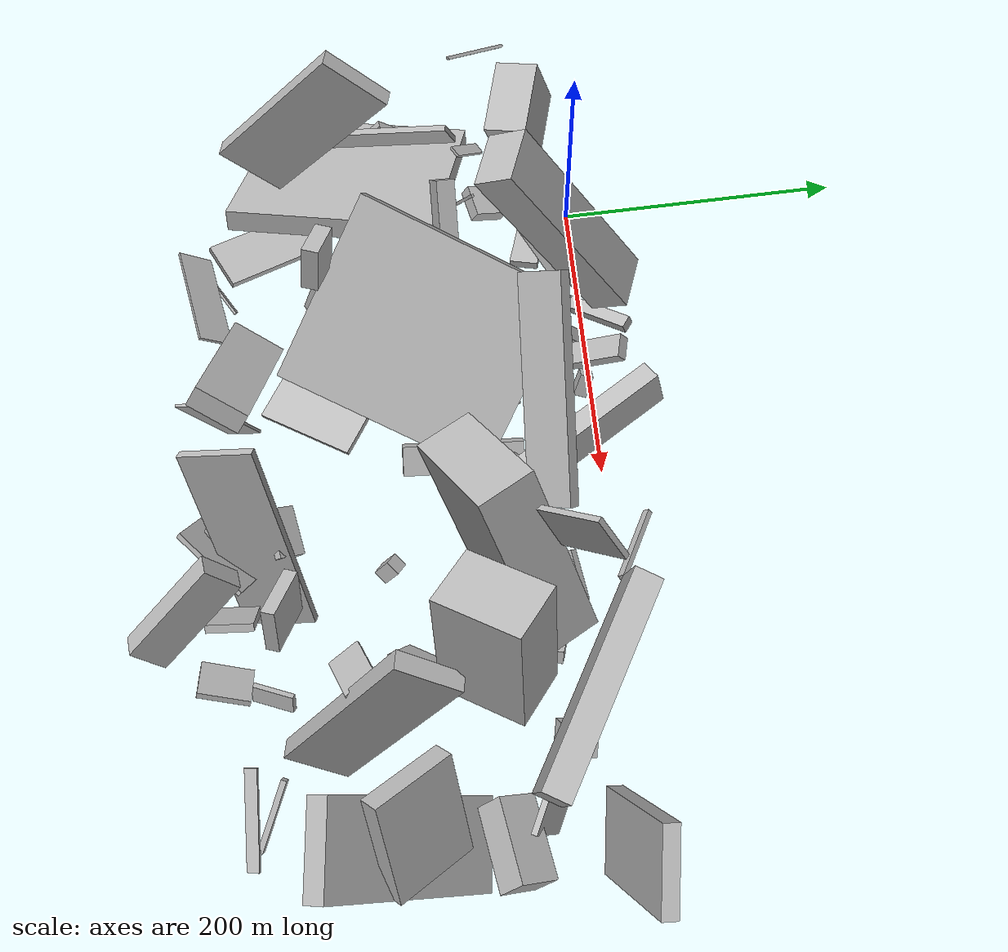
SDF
<sdf version="1.6">
 <world name="default">
  <model name="building_2">
   <static>0</static>
   <pose>-43.06416409679491 -35.29537906546936 41.528346216033526 1.5122327611272661 0.2192334558442204 -1.8726367923088598</pose>
   <link name="link">
    <gravity>0</gravity>
    <pose>0 0 26.5 0 0 0</pose>
    <collision name="collision"><geometry><box><size>31 48 53</size></box></geometry></collision>
    <visual name="visual">
     <cast_shadows>0</cast_shadows>
     <geometry><box><size>31 48 53</size></box></geometry>
     <material>
      <script>
       <uri>model://HANNAS_wall/materials/scripts</uri>
       <uri>model://HANNAS_wall/materials/textures</uri>
       <name>vrc/HANNAS_wall</name>
      </script>
     </material>
    </visual>
   </link>
  </model>
  <model name="building_3">
   <static>0</static>
   <pose>11.928828027424181 -172.6298789571358 54.83418452722762 -3.041463361954685 0.9452411731629204 -0.14230768062275148</pose>
   <link name="link">
    <gravity>0</gravity>
    <pose>0 0 75.0 0 0 0</pose>
    <collision name="collision"><geometry><box><size>15 150 150</size></box></geometry></collision>
    <visual name="visual">
     <cast_shadows>0</cast_shadows>
     <geometry><box><size>15 150 150</size></box></geometry>
     <material>
      <script>
       <uri>model://HANNAS_wall/materials/scripts</uri>
       <uri>model://HANNAS_wall/materials/textures</uri>
       <name>vrc/HANNAS_wall</name>
      </script>
     </material>
    </visual>
   </link>
  </model>
  <model name="building_4">
   <static>0</static>
   <pose>184.66313208969285 -252.12507988119435 114.79458210587899 2.497440499912522 -0.24296751222006827 1.4240888975236907</pose>
   <link name="link">
    <gravity>0</gravity>
    <pose>0 0 75.0 0 0 0</pose>
    <collision name="collision"><geometry><box><size>52 6 150</size></box></geometry></collision>
    <visual name="visual">
     <cast_shadows>0</cast_shadows>
     <geometry><box><size>52 6 150</size></box></geometry>
     <material>
      <script>
       <uri>model://HANNAS_wall/materials/scripts</uri>
       <uri>model://HANNAS_wall/materials/textures</uri>
       <name>vrc/HANNAS_wall</name>
      </script>
     </material>
    </visual>
   </link>
  </model>
  <model name="building_6">
   <static>0</static>
   <pose>258.01275105135267 -250.55222126186365 36.368019153706854 1.2348833315552048 -0.9316814360676532 -0.5921320384562274</pose>
   <link name="link">
    <gravity>0</gravity>
    <pose>0 0 28.5 0 0 0</pose>
    <collision name="collision"><geometry><box><size>29 4 57</size></box></geometry></collision>
    <visual name="visual">
     <cast_shadows>0</cast_shadows>
     <geometry><box><size>29 4 57</size></box></geometry>
     <material>
      <script>
       <uri>model://HANNAS_wall/materials/scripts</uri>
       <uri>model://HANNAS_wall/materials/textures</uri>
       <name>vrc/HANNAS_wall</name>
      </script>
     </material>
    </visual>
   </link>
  </model>
  <model name="building_7">
   <static>0</static>
   <pose>151.05791103725602 -18.51421171967675 129.4460728815901 2.471843062320055 0.056776454919606124 2.896279241501477</pose>
   <link name="link">
    <gravity>0</gravity>
    <pose>0 0 4.0 0 0 0</pose>
    <collision name="collision"><geometry><box><size>15 71 8</size></box></geometry></collision>
    <visual name="visual">
     <cast_shadows>0</cast_shadows>
     <geometry><box><size>15 71 8</size></box></geometry>
     <material>
      <script>
       <uri>model://HANNAS_wall/materials/scripts</uri>
       <uri>model://HANNAS_wall/materials/textures</uri>
       <name>vrc/HANNAS_wall</name>
      </script>
     </material>
    </visual>
   </link>
  </model>
  <model name="building_10">
   <static>0</static>
   <pose>257.06418574378597 -159.6452081089494 14.557034561253264 2.7035507755042474 0.7687642819215498 -1.2164773075696198</pose>
   <link name="link">
    <gravity>0</gravity>
    <pose>0 0 6.0 0 0 0</pose>
    <collision name="collision"><geometry><box><size>15 11 12</size></box></geometry></collision>
    <visual name="visual">
     <cast_shadows>0</cast_shadows>
     <geometry><box><size>15 11 12</size></box></geometry>
     <material>
      <script>
       <uri>model://HANNAS_wall/materials/scripts</uri>
       <uri>model://HANNAS_wall/materials/textures</uri>
       <name>vrc/HANNAS_wall</name>
      </script>
     </material>
    </visual>
   </link>
  </model>
  <model name="building_14">
   <static>0</static>
   <pose>365.4577114656404 -172.82161058765564 93.7542082871282 2.026593120078339 -0.5094875937602538 -1.970106211122446</pose>
   <link name="link">
    <gravity>0</gravity>
    <pose>0 0 6.5 0 0 0</pose>
    <collision name="collision"><geometry><box><size>47 150 13</size></box></geometry></collision>
    <visual name="visual">
     <cast_shadows>0</cast_shadows>
     <geometry><box><size>47 150 13</size></box></geometry>
     <material>
      <script>
       <uri>model://HANNAS_wall/materials/scripts</uri>
       <uri>model://HANNAS_wall/materials/textures</uri>
       <name>vrc/HANNAS_wall</name>
      </script>
     </material>
    </visual>
   </link>
  </model>
  <model name="building_15">
   <static>0</static>
   <pose>166.66447459969282 -50.158923373551104 114.08801284935214 0.5822090159343414 0.8071801652249878 1.942691280613736</pose>
   <link name="link">
    <gravity>0</gravity>
    <pose>0 0 17.0 0 0 0</pose>
    <collision name="collision"><geometry><box><size>9 150 34</size></box></geometry></collision>
    <visual name="visual">
     <cast_shadows>0</cast_shadows>
     <geometry><box><size>9 150 34</size></box></geometry>
     <material>
      <script>
       <uri>model://HANNAS_wall/materials/scripts</uri>
       <uri>model://HANNAS_wall/materials/textures</uri>
       <name>vrc/HANNAS_wall</name>
      </script>
     </material>
    </visual>
   </link>
  </model>
  <model name="building_16">
   <static>0</static>
   <pose>264.9657299309158 -90.58075863397164 92.11444260810967 -1.675676537992185 -0.679868431199056 0.5538428903663807</pose>
   <link name="link">
    <gravity>0</gravity>
    <pose>0 0 20.0 0 0 0</pose>
    <collision name="collision"><geometry><box><size>85 137 40</size></box></geometry></collision>
    <visual name="visual">
     <cast_shadows>0</cast_shadows>
     <geometry><box><size>85 137 40</size></box></geometry>
     <material>
      <script>
       <uri>model://HANNAS_wall/materials/scripts</uri>
       <uri>model://HANNAS_wall/materials/textures</uri>
       <name>vrc/HANNAS_wall</name>
      </script>
     </material>
    </visual>
   </link>
  </model>
  <model name="building_19">
   <static>0</static>
   <pose>331.62193043753535 -237.3276081575605 52.84120009543262 2.8828233184658347 0.6751338213556818 2.576929909826259</pose>
   <link name="link">
    <gravity>0</gravity>
    <pose>0 0 6.5 0 0 0</pose>
    <collision name="collision"><geometry><box><size>4 30 13</size></box></geometry></collision>
    <visual name="visual">
     <cast_shadows>0</cast_shadows>
     <geometry><box><size>4 30 13</size></box></geometry>
     <material>
      <script>
       <uri>model://HANNAS_wall/materials/scripts</uri>
       <uri>model://HANNAS_wall/materials/textures</uri>
       <name>vrc/HANNAS_wall</name>
      </script>
     </material>
    </visual>
   </link>
  </model>
  <model name="building_20">
   <static>0</static>
   <pose>165.10369536017404 -146.79498748725783 76.10419049208906 1.1660008790077596 -0.2176925827850845 -2.098831883526979</pose>
   <link name="link">
    <gravity>0</gravity>
    <pose>0 0 65.0 0 0 0</pose>
    <collision name="collision"><geometry><box><size>150 31 130</size></box></geometry></collision>
    <visual name="visual">
     <cast_shadows>0</cast_shadows>
     <geometry><box><size>150 31 130</size></box></geometry>
     <material>
      <script>
       <uri>model://HANNAS_wall/materials/scripts</uri>
       <uri>model://HANNAS_wall/materials/textures</uri>
       <name>vrc/HANNAS_wall</name>
      </script>
     </material>
    </visual>
   </link>
  </model>
  <model name="building_21">
   <static>0</static>
   <pose>348.7674322110413 -90.00247538912689 110.13595327684546 0.2784326214724259 -0.43303446359213504 -0.6743469586234977</pose>
   <link name="link">
    <gravity>0</gravity>
    <pose>0 0 43.5 0 0 0</pose>
    <collision name="collision"><geometry><box><size>42 59 87</size></box></geometry></collision>
    <visual name="visual">
     <cast_shadows>0</cast_shadows>
     <geometry><box><size>42 59 87</size></box></geometry>
     <material>
      <script>
       <uri>model://HANNAS_wall/materials/scripts</uri>
       <uri>model://HANNAS_wall/materials/textures</uri>
       <name>vrc/HANNAS_wall</name>
      </script>
     </material>
    </visual>
   </link>
  </model>
  <model name="building_23">
   <static>0</static>
   <pose>188.87959244652018 -25.453957033487313 5.468533106784075 1.3021868661032523 -0.20822001082450298 -2.5868284031259967</pose>
   <link name="link">
    <gravity>0</gravity>
    <pose>0 0 4.5 0 0 0</pose>
    <collision name="collision"><geometry><box><size>4 4 9</size></box></geometry></collision>
    <visual name="visual">
     <cast_shadows>0</cast_shadows>
     <geometry><box><size>4 4 9</size></box></geometry>
     <material>
      <script>
       <uri>model://HANNAS_wall/materials/scripts</uri>
       <uri>model://HANNAS_wall/materials/textures</uri>
       <name>vrc/HANNAS_wall</name>
      </script>
     </material>
    </visual>
   </link>
  </model>
  <model name="building_24">
   <static>0</static>
   <pose>118.08836414888549 -185.036406015912 20.844108270170324 3.1211803563545706 -0.2418961866104487 0.9813084830571864</pose>
   <link name="link">
    <gravity>0</gravity>
    <pose>0 0 2.0 0 0 0</pose>
    <collision name="collision"><geometry><box><size>75 81 4</size></box></geometry></collision>
    <visual name="visual">
     <cast_shadows>0</cast_shadows>
     <geometry><box><size>75 81 4</size></box></geometry>
     <material>
      <script>
       <uri>model://HANNAS_wall/materials/scripts</uri>
       <uri>model://HANNAS_wall/materials/textures</uri>
       <name>vrc/HANNAS_wall</name>
      </script>
     </material>
    </visual>
   </link>
  </model>
  <model name="building_28">
   <static>0</static>
   <pose>149.3635318021911 -5.051774859937405 52.0594634591486 1.1735915217077801 -0.7577960298756012 -0.0011925724624790993</pose>
   <link name="link">
    <gravity>0</gravity>
    <pose>0 0 4.5 0 0 0</pose>
    <collision name="collision"><geometry><box><size>10 16 9</size></box></geometry></collision>
    <visual name="visual">
     <cast_shadows>0</cast_shadows>
     <geometry><box><size>10 16 9</size></box></geometry>
     <material>
      <script>
       <uri>model://HANNAS_wall/materials/scripts</uri>
       <uri>model://HANNAS_wall/materials/textures</uri>
       <name>vrc/HANNAS_wall</name>
      </script>
     </material>
    </visual>
   </link>
  </model>
  <model name="building_29">
   <static>0</static>
   <pose>42.18784823916815 -88.02646242473921 102.62921909263567 2.6035690352583547 -0.33607967526793325 -1.4269190226014843</pose>
   <link name="link">
    <gravity>0</gravity>
    <pose>0 0 6.5 0 0 0</pose>
    <collision name="collision"><geometry><box><size>13 61 13</size></box></geometry></collision>
    <visual name="visual">
     <cast_shadows>0</cast_shadows>
     <geometry><box><size>13 61 13</size></box></geometry>
     <material>
      <script>
       <uri>model://HANNAS_wall/materials/scripts</uri>
       <uri>model://HANNAS_wall/materials/textures</uri>
       <name>vrc/HANNAS_wall</name>
      </script>
     </material>
    </visual>
   </link>
  </model>
  <model name="building_30">
   <static>0</static>
   <pose>409.2623093775884 -250.41735914155933 23.585346520486343 -1.5155799600463071 0.4397689259994023 -0.4874812544959937</pose>
   <link name="link">
    <gravity>0</gravity>
    <pose>0 0 2.0 0 0 0</pose>
    <collision name="collision"><geometry><box><size>55 4 4</size></box></geometry></collision>
    <visual name="visual">
     <cast_shadows>0</cast_shadows>
     <geometry><box><size>55 4 4</size></box></geometry>
     <material>
      <script>
       <uri>model://HANNAS_wall/materials/scripts</uri>
       <uri>model://HANNAS_wall/materials/textures</uri>
       <name>vrc/HANNAS_wall</name>
      </script>
     </material>
    </visual>
   </link>
  </model>
  <model name="building_33">
   <static>0</static>
   <pose>-50.37000111207336 -197.93923310095994 124.2868056558377 2.807359975993759 -0.8647878269445229 1.5696627818383009</pose>
   <link name="link">
    <gravity>0</gravity>
    <pose>0 0 25.5 0 0 0</pose>
    <collision name="collision"><geometry><box><size>136 11 51</size></box></geometry></collision>
    <visual name="visual">
     <cast_shadows>0</cast_shadows>
     <geometry><box><size>136 11 51</size></box></geometry>
     <material>
      <script>
       <uri>model://HANNAS_wall/materials/scripts</uri>
       <uri>model://HANNAS_wall/materials/textures</uri>
       <name>vrc/HANNAS_wall</name>
      </script>
     </material>
    </visual>
   </link>
  </model>
  <model name="building_45">
   <static>0</static>
   <pose>330.1906876057585 -258.58791092358086 99.24793812504151 0.7561737498831763 -0.28453524830460564 -1.834385356601723</pose>
   <link name="link">
    <gravity>0</gravity>
    <pose>0 0 2.0 0 0 0</pose>
    <collision name="collision"><geometry><box><size>33 28 4</size></box></geometry></collision>
    <visual name="visual">
     <cast_shadows>0</cast_shadows>
     <geometry><box><size>33 28 4</size></box></geometry>
     <material>
      <script>
       <uri>model://HANNAS_wall/materials/scripts</uri>
       <uri>model://HANNAS_wall/materials/textures</uri>
       <name>vrc/HANNAS_wall</name>
      </script>
     </material>
    </visual>
   </link>
  </model>
  <model name="building_47">
   <static>0</static>
   <pose>455.22679072106143 -144.58369630946999 88.53114560039074 -0.5808260478303408 -0.6486195164482991 0.9135510967537239</pose>
   <link name="link">
    <gravity>0</gravity>
    <pose>0 0 37.5 0 0 0</pose>
    <collision name="collision"><geometry><box><size>14 58 75</size></box></geometry></collision>
    <visual name="visual">
     <cast_shadows>0</cast_shadows>
     <geometry><box><size>14 58 75</size></box></geometry>
     <material>
      <script>
       <uri>model://HANNAS_wall/materials/scripts</uri>
       <uri>model://HANNAS_wall/materials/textures</uri>
       <name>vrc/HANNAS_wall</name>
      </script>
     </material>
    </visual>
   </link>
  </model>
  <model name="building_49">
   <static>0</static>
   <pose>51.85451126076477 -171.6029440386497 23.94007400052054 -0.08473145993148844 -1.106959371725571 2.1106472256454736</pose>
   <link name="link">
    <gravity>0</gravity>
    <pose>0 0 11.0 0 0 0</pose>
    <collision name="collision"><geometry><box><size>30 20 22</size></box></geometry></collision>
    <visual name="visual">
     <cast_shadows>0</cast_shadows>
     <geometry><box><size>30 20 22</size></box></geometry>
     <material>
      <script>
       <uri>model://HANNAS_wall/materials/scripts</uri>
       <uri>model://HANNAS_wall/materials/textures</uri>
       <name>vrc/HANNAS_wall</name>
      </script>
     </material>
    </visual>
   </link>
  </model>
  <model name="building_50">
   <static>0</static>
   <pose>381.9990353004755 -45.513074514839836 17.866411698278057 0.390935647062928 -0.42100439875815643 2.9326230268730615</pose>
   <link name="link">
    <gravity>0</gravity>
    <pose>0 0 6.0 0 0 0</pose>
    <collision name="collision"><geometry><box><size>25 27 12</size></box></geometry></collision>
    <visual name="visual">
     <cast_shadows>0</cast_shadows>
     <geometry><box><size>25 27 12</size></box></geometry>
     <material>
      <script>
       <uri>model://HANNAS_wall/materials/scripts</uri>
       <uri>model://HANNAS_wall/materials/textures</uri>
       <name>vrc/HANNAS_wall</name>
      </script>
     </material>
    </visual>
   </link>
  </model>
  <model name="building_51">
   <static>0</static>
   <pose>194.36180542182876 -21.818592648578857 37.29418165838637 0.005317849275152725 0.3605984642221144 -2.6105090727802627</pose>
   <link name="link">
    <gravity>0</gravity>
    <pose>0 0 14.5 0 0 0</pose>
    <collision name="collision"><geometry><box><size>15 150 29</size></box></geometry></collision>
    <visual name="visual">
     <cast_shadows>0</cast_shadows>
     <geometry><box><size>15 150 29</size></box></geometry>
     <material>
      <script>
       <uri>model://HANNAS_wall/materials/scripts</uri>
       <uri>model://HANNAS_wall/materials/textures</uri>
       <name>vrc/HANNAS_wall</name>
      </script>
     </material>
    </visual>
   </link>
  </model>
  <model name="building_53">
   <static>0</static>
   <pose>422.46195100738964 -66.9134303075443 102.5614080269164 1.6453114159032307 -0.1303402900222471 -2.1118048893734636</pose>
   <link name="link">
    <gravity>0</gravity>
    <pose>0 0 75.0 0 0 0</pose>
    <collision name="collision"><geometry><box><size>20 36 150</size></box></geometry></collision>
    <visual name="visual">
     <cast_shadows>0</cast_shadows>
     <geometry><box><size>20 36 150</size></box></geometry>
     <material>
      <script>
       <uri>model://HANNAS_wall/materials/scripts</uri>
       <uri>model://HANNAS_wall/materials/textures</uri>
       <name>vrc/HANNAS_wall</name>
      </script>
     </material>
    </visual>
   </link>
  </model>
  <model name="building_54">
   <static>0</static>
   <pose>275.94877089430133 -211.1969581363485 104.41898827226656 -0.9888658296522991 0.1295274139480752 -1.9203929691620638</pose>
   <link name="link">
    <gravity>0</gravity>
    <pose>0 0 18.5 0 0 0</pose>
    <collision name="collision"><geometry><box><size>9 34 37</size></box></geometry></collision>
    <visual name="visual">
     <cast_shadows>0</cast_shadows>
     <geometry><box><size>9 34 37</size></box></geometry>
     <material>
      <script>
       <uri>model://HANNAS_wall/materials/scripts</uri>
       <uri>model://HANNAS_wall/materials/textures</uri>
       <name>vrc/HANNAS_wall</name>
      </script>
     </material>
    </visual>
   </link>
  </model>
  <model name="building_57">
   <static>0</static>
   <pose>142.01096233073807 -56.98833805431559 22.74554374980105 0.932335480987537 0.18118007763292915 0.523214588447077</pose>
   <link name="link">
    <gravity>0</gravity>
    <pose>0 0 6.0 0 0 0</pose>
    <collision name="collision"><geometry><box><size>15 4 12</size></box></geometry></collision>
    <visual name="visual">
     <cast_shadows>0</cast_shadows>
     <geometry><box><size>15 4 12</size></box></geometry>
     <material>
      <script>
       <uri>model://HANNAS_wall/materials/scripts</uri>
       <uri>model://HANNAS_wall/materials/textures</uri>
       <name>vrc/HANNAS_wall</name>
      </script>
     </material>
    </visual>
   </link>
  </model>
  <model name="building_60">
   <static>0</static>
   <pose>-71.36244861003938 -118.81858452863871 21.498556317160705 -0.7956298110908044 0.10088602081255593 -3.098709937520458</pose>
   <link name="link">
    <gravity>0</gravity>
    <pose>0 0 11.0 0 0 0</pose>
    <collision name="collision"><geometry><box><size>5 11 22</size></box></geometry></collision>
    <visual name="visual">
     <cast_shadows>0</cast_shadows>
     <geometry><box><size>5 11 22</size></box></geometry>
     <material>
      <script>
       <uri>model://HANNAS_wall/materials/scripts</uri>
       <uri>model://HANNAS_wall/materials/textures</uri>
       <name>vrc/HANNAS_wall</name>
      </script>
     </material>
    </visual>
   </link>
  </model>
  <model name="building_61">
   <static>0</static>
   <pose>283.24565724192655 0.6529733497167829 34.97575333303216 2.250057097122529 0.7519392714954276 -1.5717614270132179</pose>
   <link name="link">
    <gravity>0</gravity>
    <pose>0 0 31.5 0 0 0</pose>
    <collision name="collision"><geometry><box><size>5 4 63</size></box></geometry></collision>
    <visual name="visual">
     <cast_shadows>0</cast_shadows>
     <geometry><box><size>5 4 63</size></box></geometry>
     <material>
      <script>
       <uri>model://HANNAS_wall/materials/scripts</uri>
       <uri>model://HANNAS_wall/materials/textures</uri>
       <name>vrc/HANNAS_wall</name>
      </script>
     </material>
    </visual>
   </link>
  </model>
  <model name="building_63">
   <static>0</static>
   <pose>192.56722485774108 -98.0083317754282 20.56300218965196 1.0449632248092298 -0.1049219775916244 -1.6099084464736897</pose>
   <link name="link">
    <gravity>0</gravity>
    <pose>0 0 10.5 0 0 0</pose>
    <collision name="collision"><geometry><box><size>85 9 21</size></box></geometry></collision>
    <visual name="visual">
     <cast_shadows>0</cast_shadows>
     <geometry><box><size>85 9 21</size></box></geometry>
     <material>
      <script>
       <uri>model://HANNAS_wall/materials/scripts</uri>
       <uri>model://HANNAS_wall/materials/textures</uri>
       <name>vrc/HANNAS_wall</name>
      </script>
     </material>
    </visual>
   </link>
  </model>
  <model name="building_64">
   <static>0</static>
   <pose>-36.837457543607734 -127.811447900529 83.92263728956752 1.0267560493773473 -1.2866377753442664 -1.212499000125185</pose>
   <link name="link">
    <gravity>0</gravity>
    <pose>0 0 2.0 0 0 0</pose>
    <collision name="collision"><geometry><box><size>24 101 4</size></box></geometry></collision>
    <visual name="visual">
     <cast_shadows>0</cast_shadows>
     <geometry><box><size>24 101 4</size></box></geometry>
     <material>
      <script>
       <uri>model://HANNAS_wall/materials/scripts</uri>
       <uri>model://HANNAS_wall/materials/textures</uri>
       <name>vrc/HANNAS_wall</name>
      </script>
     </material>
    </visual>
   </link>
  </model>
  <model name="building_65">
   <static>0</static>
   <pose>-6.128745132556276 -62.99847968742101 22.634601134865566 0.005527921167366226 0.54179138102185 1.7846418860374635</pose>
   <link name="link">
    <gravity>0</gravity>
    <pose>0 0 5.0 0 0 0</pose>
    <collision name="collision"><geometry><box><size>26 23 10</size></box></geometry></collision>
    <visual name="visual">
     <cast_shadows>0</cast_shadows>
     <geometry><box><size>26 23 10</size></box></geometry>
     <material>
      <script>
       <uri>model://HANNAS_wall/materials/scripts</uri>
       <uri>model://HANNAS_wall/materials/textures</uri>
       <name>vrc/HANNAS_wall</name>
      </script>
     </material>
    </visual>
   </link>
  </model>
  <model name="building_66">
   <static>0</static>
   <pose>81.9479317549413 -75.69687734459407 33.560418069760594 1.8741774231783672 0.17818446582374498 -1.288332411409284</pose>
   <link name="link">
    <gravity>0</gravity>
    <pose>0 0 11.0 0 0 0</pose>
    <collision name="collision"><geometry><box><size>4 28 22</size></box></geometry></collision>
    <visual name="visual">
     <cast_shadows>0</cast_shadows>
     <geometry><box><size>4 28 22</size></box></geometry>
     <material>
      <script>
       <uri>model://HANNAS_wall/materials/scripts</uri>
       <uri>model://HANNAS_wall/materials/textures</uri>
       <name>vrc/HANNAS_wall</name>
      </script>
     </material>
    </visual>
   </link>
  </model>
  <model name="building_67">
   <static>0</static>
   <pose>276.3079915190888 -26.839800865291668 24.945400055172634 2.268584610017891 0.114789414020856 0.14409700860007885</pose>
   <link name="link">
    <gravity>0</gravity>
    <pose>0 0 2.0 0 0 0</pose>
    <collision name="collision"><geometry><box><size>36 6 4</size></box></geometry></collision>
    <visual name="visual">
     <cast_shadows>0</cast_shadows>
     <geometry><box><size>36 6 4</size></box></geometry>
     <material>
      <script>
       <uri>model://HANNAS_wall/materials/scripts</uri>
       <uri>model://HANNAS_wall/materials/textures</uri>
       <name>vrc/HANNAS_wall</name>
      </script>
     </material>
    </visual>
   </link>
  </model>
  <model name="building_69">
   <static>0</static>
   <pose>108.86445808711422 -23.45648935128616 61.82471849127363 0.17870301772061742 -0.9470533443037084 -1.7374442797381486</pose>
   <link name="link">
    <gravity>0</gravity>
    <pose>0 0 2.0 0 0 0</pose>
    <collision name="collision"><geometry><box><size>52 11 4</size></box></geometry></collision>
    <visual name="visual">
     <cast_shadows>0</cast_shadows>
     <geometry><box><size>52 11 4</size></box></geometry>
     <material>
      <script>
       <uri>model://HANNAS_wall/materials/scripts</uri>
       <uri>model://HANNAS_wall/materials/textures</uri>
       <name>vrc/HANNAS_wall</name>
      </script>
     </material>
    </visual>
   </link>
  </model>
  <model name="building_70">
   <static>0</static>
   <pose>438.2270873054151 -166.12735919697775 77.68704026759366 0.9131875787359683 -0.004361534929304074 3.0190458051727083</pose>
   <link name="link">
    <gravity>0</gravity>
    <pose>0 0 8.5 0 0 0</pose>
    <collision name="collision"><geometry><box><size>61 150 17</size></box></geometry></collision>
    <visual name="visual">
     <cast_shadows>0</cast_shadows>
     <geometry><box><size>61 150 17</size></box></geometry>
     <material>
      <script>
       <uri>model://HANNAS_wall/materials/scripts</uri>
       <uri>model://HANNAS_wall/materials/textures</uri>
       <name>vrc/HANNAS_wall</name>
      </script>
     </material>
    </visual>
   </link>
  </model>
  <model name="building_71">
   <static>0</static>
   <pose>329.75144250305704 -48.70950519059306 16.462513978820784 -0.10675643134729136 0.7660464939468027 2.7809853302242495</pose>
   <link name="link">
    <gravity>0</gravity>
    <pose>0 0 5.0 0 0 0</pose>
    <collision name="collision"><geometry><box><size>11 8 10</size></box></geometry></collision>
    <visual name="visual">
     <cast_shadows>0</cast_shadows>
     <geometry><box><size>11 8 10</size></box></geometry>
     <material>
      <script>
       <uri>model://HANNAS_wall/materials/scripts</uri>
       <uri>model://HANNAS_wall/materials/textures</uri>
       <name>vrc/HANNAS_wall</name>
      </script>
     </material>
    </visual>
   </link>
  </model>
  <model name="building_75">
   <static>0</static>
   <pose>68.66317637081539 -170.13162030286927 165.04719028151356 3.1319127238799203 0.5624181085169591 2.789271390961326</pose>
   <link name="link">
    <gravity>0</gravity>
    <pose>0 0 14.5 0 0 0</pose>
    <collision name="collision"><geometry><box><size>29 11 29</size></box></geometry></collision>
    <visual name="visual">
     <cast_shadows>0</cast_shadows>
     <geometry><box><size>29 11 29</size></box></geometry>
     <material>
      <script>
       <uri>model://HANNAS_wall/materials/scripts</uri>
       <uri>model://HANNAS_wall/materials/textures</uri>
       <name>vrc/HANNAS_wall</name>
      </script>
     </material>
    </visual>
   </link>
  </model>
  <model name="building_76">
   <static>0</static>
   <pose>433.18038455075646 -65.40833070665079 45.58532045907508 1.7977092775766574 0.08802014878886705 -0.45398355679737085</pose>
   <link name="link">
    <gravity>0</gravity>
    <pose>0 0 2.0 0 0 0</pose>
    <collision name="collision"><geometry><box><size>24 62 4</size></box></geometry></collision>
    <visual name="visual">
     <cast_shadows>0</cast_shadows>
     <geometry><box><size>24 62 4</size></box></geometry>
     <material>
      <script>
       <uri>model://HANNAS_wall/materials/scripts</uri>
       <uri>model://HANNAS_wall/materials/textures</uri>
       <name>vrc/HANNAS_wall</name>
      </script>
     </material>
    </visual>
   </link>
  </model>
  <model name="building_77">
   <static>0</static>
   <pose>27.413113073140778 -42.10033410471799 26.59305684612779 1.43264310673937 -1.0912201843538867 3.0103473289688636</pose>
   <link name="link">
    <gravity>0</gravity>
    <pose>0 0 10.0 0 0 0</pose>
    <collision name="collision"><geometry><box><size>5 47 20</size></box></geometry></collision>
    <visual name="visual">
     <cast_shadows>0</cast_shadows>
     <geometry><box><size>5 47 20</size></box></geometry>
     <material>
      <script>
       <uri>model://HANNAS_wall/materials/scripts</uri>
       <uri>model://HANNAS_wall/materials/textures</uri>
       <name>vrc/HANNAS_wall</name>
      </script>
     </material>
    </visual>
   </link>
  </model>
  <model name="building_78">
   <static>0</static>
   <pose>256.3833341061197 -258.57552883821756 88.70226587850065 2.1695710149776923 -0.5780485121159463 0.2352604038051046</pose>
   <link name="link">
    <gravity>0</gravity>
    <pose>0 0 41.0 0 0 0</pose>
    <collision name="collision"><geometry><box><size>16 28 82</size></box></geometry></collision>
    <visual name="visual">
     <cast_shadows>0</cast_shadows>
     <geometry><box><size>16 28 82</size></box></geometry>
     <material>
      <script>
       <uri>model://HANNAS_wall/materials/scripts</uri>
       <uri>model://HANNAS_wall/materials/textures</uri>
       <name>vrc/HANNAS_wall</name>
      </script>
     </material>
    </visual>
   </link>
  </model>
  <model name="building_85">
   <static>0</static>
   <pose>262.42681040231184 -40.831361621745344 139.09631896592714 -1.3166279448140743 0.7129343175172832 -2.088748764153848</pose>
   <link name="link">
    <gravity>0</gravity>
    <pose>0 0 2.0 0 0 0</pose>
    <collision name="collision"><geometry><box><size>89 36 4</size></box></geometry></collision>
    <visual name="visual">
     <cast_shadows>0</cast_shadows>
     <geometry><box><size>89 36 4</size></box></geometry>
     <material>
      <script>
       <uri>model://HANNAS_wall/materials/scripts</uri>
       <uri>model://HANNAS_wall/materials/textures</uri>
       <name>vrc/HANNAS_wall</name>
      </script>
     </material>
    </visual>
   </link>
  </model>
  <model name="building_86">
   <static>0</static>
   <pose>76.97224089773907 -20.996545481419478 126.114691639326 1.7837970578018985 -0.9620151689671828 -2.1134676869506626</pose>
   <link name="link">
    <gravity>0</gravity>
    <pose>0 0 18.5 0 0 0</pose>
    <collision name="collision"><geometry><box><size>150 28 37</size></box></geometry></collision>
    <visual name="visual">
     <cast_shadows>0</cast_shadows>
     <geometry><box><size>150 28 37</size></box></geometry>
     <material>
      <script>
       <uri>model://HANNAS_wall/materials/scripts</uri>
       <uri>model://HANNAS_wall/materials/textures</uri>
       <name>vrc/HANNAS_wall</name>
      </script>
     </material>
    </visual>
   </link>
  </model>
  <model name="building_89">
   <static>0</static>
   <pose>445.27600611050957 -29.349523842742787 61.20507617609588 0.23223507607686714 0.2625566932916978 1.4888044055027303</pose>
   <link name="link">
    <gravity>0</gravity>
    <pose>0 0 49.5 0 0 0</pose>
    <collision name="collision"><geometry><box><size>11 55 99</size></box></geometry></collision>
    <visual name="visual">
     <cast_shadows>0</cast_shadows>
     <geometry><box><size>11 55 99</size></box></geometry>
     <material>
      <script>
       <uri>model://HANNAS_wall/materials/scripts</uri>
       <uri>model://HANNAS_wall/materials/textures</uri>
       <name>vrc/HANNAS_wall</name>
      </script>
     </material>
    </visual>
   </link>
  </model>
  <model name="building_91">
   <static>0</static>
   <pose>210.59917951852987 -225.28058908520916 51.55774004990402 1.7344797425064202 -0.7633025838621087 1.6138504825800708</pose>
   <link name="link">
    <gravity>0</gravity>
    <pose>0 0 17.0 0 0 0</pose>
    <collision name="collision"><geometry><box><size>6 21 34</size></box></geometry></collision>
    <visual name="visual">
     <cast_shadows>0</cast_shadows>
     <geometry><box><size>6 21 34</size></box></geometry>
     <material>
      <script>
       <uri>model://HANNAS_wall/materials/scripts</uri>
       <uri>model://HANNAS_wall/materials/textures</uri>
       <name>vrc/HANNAS_wall</name>
      </script>
     </material>
    </visual>
   </link>
  </model>
  <model name="building_92">
   <static>0</static>
   <pose>205.05314537868855 -50.32394315458065 59.30461001858064 2.3457652630587265 -0.2530089579722836 0.7715633840983913</pose>
   <link name="link">
    <gravity>0</gravity>
    <pose>0 0 4.0 0 0 0</pose>
    <collision name="collision"><geometry><box><size>37 4 8</size></box></geometry></collision>
    <visual name="visual">
     <cast_shadows>0</cast_shadows>
     <geometry><box><size>37 4 8</size></box></geometry>
     <material>
      <script>
       <uri>model://HANNAS_wall/materials/scripts</uri>
       <uri>model://HANNAS_wall/materials/textures</uri>
       <name>vrc/HANNAS_wall</name>
      </script>
     </material>
    </visual>
   </link>
  </model>
  <model name="building_93">
   <static>0</static>
   <pose>38.7850511400388 -20.645261195220066 61.76645983683884 -2.7267274066470244 0.7072765487989614 2.385486787113815</pose>
   <link name="link">
    <gravity>0</gravity>
    <pose>0 0 7.5 0 0 0</pose>
    <collision name="collision"><geometry><box><size>8 68 15</size></box></geometry></collision>
    <visual name="visual">
     <cast_shadows>0</cast_shadows>
     <geometry><box><size>8 68 15</size></box></geometry>
     <material>
      <script>
       <uri>model://HANNAS_wall/materials/scripts</uri>
       <uri>model://HANNAS_wall/materials/textures</uri>
       <name>vrc/HANNAS_wall</name>
      </script>
     </material>
    </visual>
   </link>
  </model>
  <model name="building_95">
   <static>0</static>
   <pose>-77.55790568097585 -183.59228518629712 6.564678579542537 0.25897616588723243 -0.7899898769431521 -0.3574477395279056</pose>
   <link name="link">
    <gravity>0</gravity>
    <pose>0 0 2.0 0 0 0</pose>
    <collision name="collision"><geometry><box><size>6 23 4</size></box></geometry></collision>
    <visual name="visual">
     <cast_shadows>0</cast_shadows>
     <geometry><box><size>6 23 4</size></box></geometry>
     <material>
      <script>
       <uri>model://HANNAS_wall/materials/scripts</uri>
       <uri>model://HANNAS_wall/materials/textures</uri>
       <name>vrc/HANNAS_wall</name>
      </script>
     </material>
    </visual>
   </link>
  </model>
  <model name="building_96">
   <static>0</static>
   <pose>76.34512345960155 -104.50434885852214 26.577123302803763 0.6568828244471757 -0.4422805065065941 1.5228087484551949</pose>
   <link name="link">
    <gravity>0</gravity>
    <pose>0 0 2.0 0 0 0</pose>
    <collision name="collision"><geometry><box><size>20 43 4</size></box></geometry></collision>
    <visual name="visual">
     <cast_shadows>0</cast_shadows>
     <geometry><box><size>20 43 4</size></box></geometry>
     <material>
      <script>
       <uri>model://HANNAS_wall/materials/scripts</uri>
       <uri>model://HANNAS_wall/materials/textures</uri>
       <name>vrc/HANNAS_wall</name>
      </script>
     </material>
    </visual>
   </link>
  </model>
  <model name="building_98">
   <static>0</static>
   <pose>118.1566223862664 -237.19871351656627 82.12880256402781 -2.3342078137874807 -0.3295863801587334 -2.150276859919602</pose>
   <link name="link">
    <gravity>0</gravity>
    <pose>0 0 8.0 0 0 0</pose>
    <collision name="collision"><geometry><box><size>38 93 16</size></box></geometry></collision>
    <visual name="visual">
     <cast_shadows>0</cast_shadows>
     <geometry><box><size>38 93 16</size></box></geometry>
     <material>
      <script>
       <uri>model://HANNAS_wall/materials/scripts</uri>
       <uri>model://HANNAS_wall/materials/textures</uri>
       <name>vrc/HANNAS_wall</name>
      </script>
     </material>
    </visual>
   </link>
  </model>
  <model name="building_100">
   <static>0</static>
   <pose>230.79193453562738 -279.38437748079116 30.01859346139618 0.7826901744151804 0.028215945967054602 -2.391230005966636</pose>
   <link name="link">
    <gravity>0</gravity>
    <pose>0 0 19.5 0 0 0</pose>
    <collision name="collision"><geometry><box><size>15 4 39</size></box></geometry></collision>
    <visual name="visual">
     <cast_shadows>0</cast_shadows>
     <geometry><box><size>15 4 39</size></box></geometry>
     <material>
      <script>
       <uri>model://HANNAS_wall/materials/scripts</uri>
       <uri>model://HANNAS_wall/materials/textures</uri>
       <name>vrc/HANNAS_wall</name>
      </script>
     </material>
    </visual>
   </link>
  </model>
  <model name="building_101">
   <static>0</static>
   <pose>67.66066236213653 -32.47911085829753 30.227570825061036 -0.0765952462460934 1.1835472697097233 0.8448854782965104</pose>
   <link name="link">
    <gravity>0</gravity>
    <pose>0 0 40.0 0 0 0</pose>
    <collision name="collision"><geometry><box><size>8 9 80</size></box></geometry></collision>
    <visual name="visual">
     <cast_shadows>0</cast_shadows>
     <geometry><box><size>8 9 80</size></box></geometry>
     <material>
      <script>
       <uri>model://HANNAS_wall/materials/scripts</uri>
       <uri>model://HANNAS_wall/materials/textures</uri>
       <name>vrc/HANNAS_wall</name>
      </script>
     </material>
    </visual>
   </link>
  </model>
  <model name="building_104">
   <static>0</static>
   <pose>79.89019463896173 -262.6944684832082 33.867273941517425 1.9322050697444189 0.7503477475710638 -1.1213303884657049</pose>
   <link name="link">
    <gravity>0</gravity>
    <pose>0 0 40.0 0 0 0</pose>
    <collision name="collision"><geometry><box><size>2 26 80</size></box></geometry></collision>
    <visual name="visual">
     <cast_shadows>0</cast_shadows>
     <geometry><box><size>2 26 80</size></box></geometry>
     <material>
      <script>
       <uri>model://HANNAS_wall/materials/scripts</uri>
       <uri>model://HANNAS_wall/materials/textures</uri>
       <name>vrc/HANNAS_wall</name>
      </script>
     </material>
    </visual>
   </link>
  </model>
  <model name="building_106">
   <static>0</static>
   <pose>-53.91624509054622 -59.56933677609615 21.12536555864059 -0.054162677176778105 0.7801022522624271 -1.0805871048788214</pose>
   <link name="link">
    <gravity>0</gravity>
    <pose>0 0 15.5 0 0 0</pose>
    <collision name="collision"><geometry><box><size>2 9 31</size></box></geometry></collision>
    <visual name="visual">
     <cast_shadows>0</cast_shadows>
     <geometry><box><size>2 9 31</size></box></geometry>
     <material>
      <script>
       <uri>model://HANNAS_wall/materials/scripts</uri>
       <uri>model://HANNAS_wall/materials/textures</uri>
       <name>vrc/HANNAS_wall</name>
      </script>
     </material>
    </visual>
   </link>
  </model>
  <model name="building_107">
   <static>0</static>
   <pose>330.18830043626207 -178.98740492946797 100.82792223396035 -0.1387058451318894 0.7594162398148775 -2.6988635245481127</pose>
   <link name="link">
    <gravity>0</gravity>
    <pose>0 0 1.0 0 0 0</pose>
    <collision name="collision"><geometry><box><size>37 23 2</size></box></geometry></collision>
    <visual name="visual">
     <cast_shadows>0</cast_shadows>
     <geometry><box><size>37 23 2</size></box></geometry>
     <material>
      <script>
       <uri>model://HANNAS_wall/materials/scripts</uri>
       <uri>model://HANNAS_wall/materials/textures</uri>
       <name>vrc/HANNAS_wall</name>
      </script>
     </material>
    </visual>
   </link>
  </model>
  <model name="building_108">
   <static>0</static>
   <pose>3.4262632536829756 -76.40355590999684 56.03396703703383 1.154148016113385 0.3774517984164671 0.32837382763696465</pose>
   <link name="link">
    <gravity>0</gravity>
    <pose>0 0 1.0 0 0 0</pose>
    <collision name="collision"><geometry><box><size>2 33 2</size></box></geometry></collision>
    <visual name="visual">
     <cast_shadows>0</cast_shadows>
     <geometry><box><size>2 33 2</size></box></geometry>
     <material>
      <script>
       <uri>model://HANNAS_wall/materials/scripts</uri>
       <uri>model://HANNAS_wall/materials/textures</uri>
       <name>vrc/HANNAS_wall</name>
      </script>
     </material>
    </visual>
   </link>
  </model>
  <model name="building_111">
   <static>0</static>
   <pose>448.56347267211277 -97.84192875335705 60.20018985855211 0.7633906033727544 0.17665581115040044 -2.9875437591220577</pose>
   <link name="link">
    <gravity>0</gravity>
    <pose>0 0 11.0 0 0 0</pose>
    <collision name="collision"><geometry><box><size>55 30 22</size></box></geometry></collision>
    <visual name="visual">
     <cast_shadows>0</cast_shadows>
     <geometry><box><size>55 30 22</size></box></geometry>
     <material>
      <script>
       <uri>model://HANNAS_wall/materials/scripts</uri>
       <uri>model://HANNAS_wall/materials/textures</uri>
       <name>vrc/HANNAS_wall</name>
      </script>
     </material>
    </visual>
   </link>
  </model>
  <model name="building_112">
   <static>0</static>
   <pose>459.99918053808085 -224.5847929506149 18.417990271690922 -2.248437047434654 -0.2831331219133845 1.2798011900440724</pose>
   <link name="link">
    <gravity>0</gravity>
    <pose>0 0 2.5 0 0 0</pose>
    <collision name="collision"><geometry><box><size>3 4 5</size></box></geometry></collision>
    <visual name="visual">
     <cast_shadows>0</cast_shadows>
     <geometry><box><size>3 4 5</size></box></geometry>
     <material>
      <script>
       <uri>model://HANNAS_wall/materials/scripts</uri>
       <uri>model://HANNAS_wall/materials/textures</uri>
       <name>vrc/HANNAS_wall</name>
      </script>
     </material>
    </visual>
   </link>
  </model>
  <model name="building_115">
   <static>0</static>
   <pose>151.94708478670182 -245.09490028357666 43.15192256443175 0.0227729624207811 0.4319741660133501 -1.7908329863581958</pose>
   <link name="link">
    <gravity>0</gravity>
    <pose>0 0 29.5 0 0 0</pose>
    <collision name="collision"><geometry><box><size>27 2 59</size></box></geometry></collision>
    <visual name="visual">
     <cast_shadows>0</cast_shadows>
     <geometry><box><size>27 2 59</size></box></geometry>
     <material>
      <script>
       <uri>model://HANNAS_wall/materials/scripts</uri>
       <uri>model://HANNAS_wall/materials/textures</uri>
       <name>vrc/HANNAS_wall</name>
      </script>
     </material>
    </visual>
   </link>
  </model>
  <model name="building_117">
   <static>0</static>
   <pose>-54.16626607446358 -57.87429366692338 155.45526386897444 -0.5151641640856255 0.4741425077463141 0.17263997834757888</pose>
   <link name="link">
    <gravity>0</gravity>
    <pose>0 0 1.0 0 0 0</pose>
    <collision name="collision"><geometry><box><size>2 45 2</size></box></geometry></collision>
    <visual name="visual">
     <cast_shadows>0</cast_shadows>
     <geometry><box><size>2 45 2</size></box></geometry>
     <material>
      <script>
       <uri>model://HANNAS_wall/materials/scripts</uri>
       <uri>model://HANNAS_wall/materials/textures</uri>
       <name>vrc/HANNAS_wall</name>
      </script>
     </material>
    </visual>
   </link>
  </model>
  <model name="building_119">
   <static>0</static>
   <pose>7.807685781429953 -221.21666928565563 19.99227703682893 0.30561933406924047 0.02487138823785343 -2.6875106842616563</pose>
   <link name="link">
    <gravity>0</gravity>
    <pose>0 0 2.5 0 0 0</pose>
    <collision name="collision"><geometry><box><size>34 80 5</size></box></geometry></collision>
    <visual name="visual">
     <cast_shadows>0</cast_shadows>
     <geometry><box><size>34 80 5</size></box></geometry>
     <material>
      <script>
       <uri>model://HANNAS_wall/materials/scripts</uri>
       <uri>model://HANNAS_wall/materials/textures</uri>
       <name>vrc/HANNAS_wall</name>
      </script>
     </material>
    </visual>
   </link>
  </model>
  <model name="building_122">
   <static>0</static>
   <pose>77.47488223478919 7.274088887590947 11.301123189773659 -1.2684757809042355 -0.7897575770311169 -2.679920640232453</pose>
   <link name="link">
    <gravity>0</gravity>
    <pose>0 0 4.5 0 0 0</pose>
    <collision name="collision"><geometry><box><size>2 7 9</size></box></geometry></collision>
    <visual name="visual">
     <cast_shadows>0</cast_shadows>
     <geometry><box><size>2 7 9</size></box></geometry>
     <material>
      <script>
       <uri>model://HANNAS_wall/materials/scripts</uri>
       <uri>model://HANNAS_wall/materials/textures</uri>
       <name>vrc/HANNAS_wall</name>
      </script>
     </material>
    </visual>
   </link>
  </model>
  <model name="building_123">
   <static>0</static>
   <pose>280.29488995080715 -265.9583803704464 22.90506877811762 -0.002055105416475656 -0.9882299316575649 -0.08256705942049102</pose>
   <link name="link">
    <gravity>0</gravity>
    <pose>0 0 3.0 0 0 0</pose>
    <collision name="collision"><geometry><box><size>27 33 6</size></box></geometry></collision>
    <visual name="visual">
     <cast_shadows>0</cast_shadows>
     <geometry><box><size>27 33 6</size></box></geometry>
     <material>
      <script>
       <uri>model://HANNAS_wall/materials/scripts</uri>
       <uri>model://HANNAS_wall/materials/textures</uri>
       <name>vrc/HANNAS_wall</name>
      </script>
     </material>
    </visual>
   </link>
  </model>
  <model name="building_126">
   <static>0</static>
   <pose>324.3766395598849 -130.13214818031577 29.592503300319336 -0.5072398101733256 0.31164982468960756 -2.1230279132917484</pose>
   <link name="link">
    <gravity>0</gravity>
    <pose>0 0 14.0 0 0 0</pose>
    <collision name="collision"><geometry><box><size>47 8 28</size></box></geometry></collision>
    <visual name="visual">
     <cast_shadows>0</cast_shadows>
     <geometry><box><size>47 8 28</size></box></geometry>
     <material>
      <script>
       <uri>model://HANNAS_wall/materials/scripts</uri>
       <uri>model://HANNAS_wall/materials/textures</uri>
       <name>vrc/HANNAS_wall</name>
      </script>
     </material>
    </visual>
   </link>
  </model>
  <model name="building_128">
   <static>0</static>
   <pose>411.3988332791819 -256.39507403347795 50.8722994134859 -0.29079968076968943 -0.27794605438848174 3.0429858962948404</pose>
   <link name="link">
    <gravity>0</gravity>
    <pose>0 0 1.0 0 0 0</pose>
    <collision name="collision"><geometry><box><size>67 9 2</size></box></geometry></collision>
    <visual name="visual">
     <cast_shadows>0</cast_shadows>
     <geometry><box><size>67 9 2</size></box></geometry>
     <material>
      <script>
       <uri>model://HANNAS_wall/materials/scripts</uri>
       <uri>model://HANNAS_wall/materials/textures</uri>
       <name>vrc/HANNAS_wall</name>
      </script>
     </material>
    </visual>
   </link>
  </model>
  <model name="building_132">
   <static>0</static>
   <pose>313.16206533294667 -91.98454227701015 15.41961722820939 1.7483649021196985 1.1687421850884283 -2.909941910424294</pose>
   <link name="link">
    <gravity>0</gravity>
    <pose>0 0 1.0 0 0 0</pose>
    <collision name="collision"><geometry><box><size>17 12 2</size></box></geometry></collision>
    <visual name="visual">
     <cast_shadows>0</cast_shadows>
     <geometry><box><size>17 12 2</size></box></geometry>
     <material>
      <script>
       <uri>model://HANNAS_wall/materials/scripts</uri>
       <uri>model://HANNAS_wall/materials/textures</uri>
       <name>vrc/HANNAS_wall</name>
      </script>
     </material>
    </visual>
   </link>
  </model>
  <model name="building_133">
   <static>0</static>
   <pose>34.21616448171584 -261.27681495192945 5.4914807329402775 -3.033569890479486 -0.4504857088992884 2.0629601969207605</pose>
   <link name="link">
    <gravity>0</gravity>
    <pose>0 0 1.5 0 0 0</pose>
    <collision name="collision"><geometry><box><size>2 33 3</size></box></geometry></collision>
    <visual name="visual">
     <cast_shadows>0</cast_shadows>
     <geometry><box><size>2 33 3</size></box></geometry>
     <material>
      <script>
       <uri>model://HANNAS_wall/materials/scripts</uri>
       <uri>model://HANNAS_wall/materials/textures</uri>
       <name>vrc/HANNAS_wall</name>
      </script>
     </material>
    </visual>
   </link>
  </model>
 </world>
</sdf>
